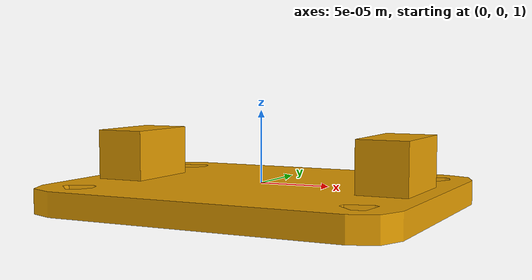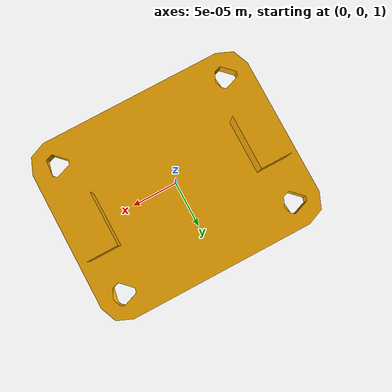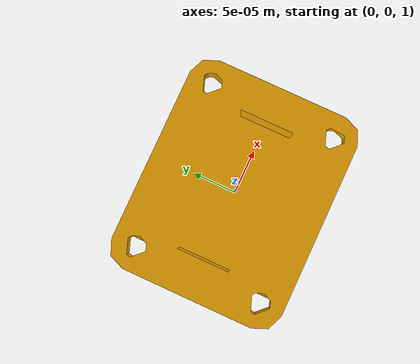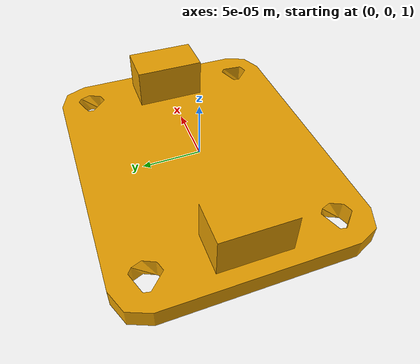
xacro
<?xml version="1.0"?>
<robot xmlns:xacro="http://www.ros.org/wiki/xacro" name="imu_robot">
  <link name="imu_link">
    <visual>
      <origin xyz="0 0 1" rpy="0 0 0"/>
      <geometry>
        <mesh filename="package://robot/meshes/imu.stl" scale="0.01 0.01 0.01"/>
      </geometry>
    </visual>
    <collision>
      <origin xyz="0 0 1" rpy="0 0 0"/>
      <geometry>
        <mesh filename="package://robot/meshes/imu.stl" scale="0.01 0.01 0.01"/>
      </geometry>
    </collision>
  </link>
</robot>
